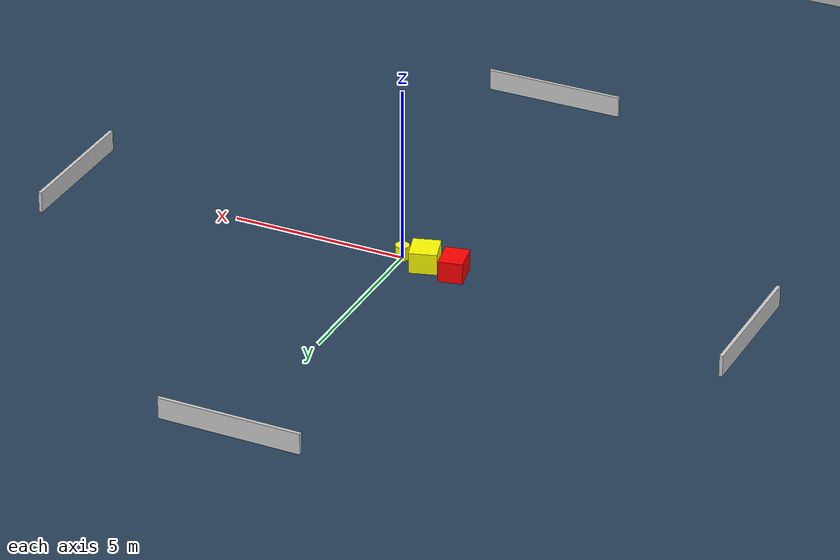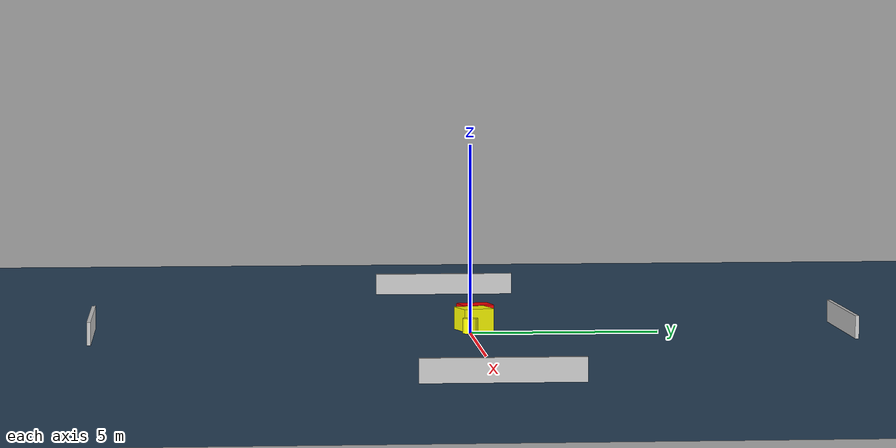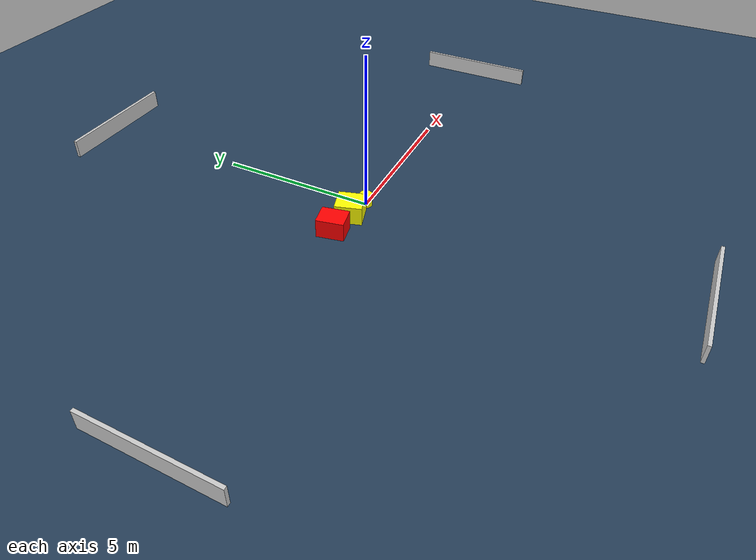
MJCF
<?xml version="1.0" ?>
<mujoco model="generated_environment">
  <option timestep="0.01" integrator="RK4" cone="elliptic"/>
  <default>
    <geom density="1"/>
  </default>
  <asset>
    <texture builtin="gradient" height="3072" name="skybox" rgb1="0.3 0.5 0.7" rgb2="0 0 0" type="skybox" width="512"/>
    <texture builtin="checker" height="300" name="groundplane" rgb1="0.2 0.3 0.4" rgb2="0.1 0.2 0.3" type="2d" width="300"/>
    <material name="groundplane" reflectance="0.2" texrepeat="5 5" texture="groundplane"/>
  </asset>
  <worldbody>
    <light dir="0 0 -1" directional="true" pos="0 0 1.5"/>
    <geom condim="3" friction="0.5 0.005 0.001" material="groundplane" name="floor" pos="0 0 0" size="0 0 0.05" type="plane"/>
    <body name="walls">
      <geom name="wall_1" condim="4" pos="-10.0 0.0 0.3" rgba="0.800000011920929 0.800000011920929 0.800000011920929 1.0" size="0.05 2.0 0.3" type="box"/>
      <geom name="wall_2" condim="4" pos="10.0 0.0 0.3" rgba="0.800000011920929 0.800000011920929 0.800000011920929 1.0" size="0.05 2.0 0.3" type="box"/>
      <geom name="wall_3" condim="4" pos="0.0 -10.0 0.3" rgba="0.800000011920929 0.800000011920929 0.800000011920929 1.0" size="2.0 0.05 0.3" type="box"/>
      <geom name="wall_4" condim="4" pos="0.0 10.0 0.3" rgba="0.800000011920929 0.800000011920929 0.800000011920929 1.0" size="2.0 0.05 0.3" type="box"/>
    </body>
    <body name="robot">
      <joint name="joint_x" type="slide" pos="0 0 0" axis="1 0 0"/>
      <joint name="joint_y" type="slide" pos="0 0 0" axis="0 1 0"/>
      <geom name="robot" type="cylinder" pos="0.0 0.0 0.2" size="0.2 0.2 0.0" mass="5.0" friction="1.0 0.005 0.0001" condim="4" rgba="1.0 1.0 0.0 1.0"/>
    </body>
    <body name="obstacle_1_movable">
      <geom name="obstacle_1_movable" condim="4" pos="-0.7401519890479584 0.15946663260949173 0.3" euler="0 0 106.78840865795623" friction="0.0 0.005 0.001" rgba="1.0 1.0 0.0 1.0" size="0.4206123530487189 0.3857530383030392 0.3" type="box" mass="0.1"/>
      <joint type="free"/>
    </body>
    <body name="obstacle_2_static">
      <geom name="obstacle_2_static" condim="4" pos="-1.641334098680578 0.26003089702399457 0.3" euler="0 0 101.47231581043438" friction="0.0 0.005 0.001" rgba="1.0 0.0 0.0 1.0" size="0.4253333393363882 0.33816806012068545 0.3" type="box"/>
    </body>
  </worldbody>
  <actuator>
    <motor name="actuator_x" joint="joint_x" gear="1" ctrlrange="-1 1"/>
    <motor name="actuator_y" joint="joint_y" gear="1" ctrlrange="-1 1"/>
  </actuator>
</mujoco>
